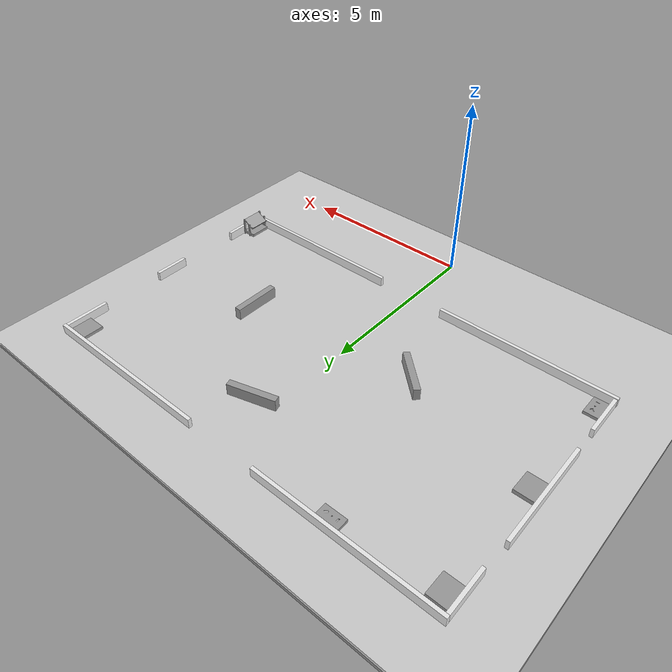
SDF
<sdf version="1.6">
 <world name="default">
  <light name="sun" type="directional">
   <pose>0 0 10 0 -0 0</pose>
   <diffuse>0.8 0.8 0.8 1</diffuse>
   <specular>0.2 0.2 0.2 1</specular>
   <attenuation>
    <range>1000</range>
    <constant>0.9</constant>
    <linear>0.01</linear>
    <quadratic>0.001</quadratic>
   </attenuation>
   <direction>-0.5 0.1 -0.9</direction>
  </light>
  <model name="ground_plane">
   <static>1</static>
   <link name="link">
    <collision name="collision">
     <geometry><plane><normal>0 0 1</normal><size>100 100</size></plane></geometry>
     <surface>
      <contact><collide_bitmask>65535</collide_bitmask></contact>
      <friction><ode><mu>100</mu><mu2>50</mu2></ode></friction>
     </surface>
    </collision>
    <visual name="visual">
     <cast_shadows>0</cast_shadows>
     <geometry><plane><normal>0 0 1</normal><size>100 100</size></plane></geometry>
     <material>
      <script><uri>file://media/materials/scripts/gazebo.material</uri><name>Gazebo/Grey</name></script>
     </material>
    </visual>
   </link>
  </model>
  <gravity>0 0 -9.8</gravity>
  <magnetic_field>6e-06 2.3e-05 -4.2e-05</magnetic_field>
  <atmosphere type="adiabatic"/>
  <physics name="default_physics" default="0" type="ode">
   <max_step_size>0.005</max_step_size>
   <real_time_factor>1</real_time_factor>
   <real_time_update_rate>1000</real_time_update_rate>
  </physics>
  <scene><ambient>0.4 0.4 0.4 1</ambient><background>0.7 0.7 0.7 1</background><shadows>1</shadows></scene>
  <audio><device>default</device></audio>
  <spherical_coordinates>
   <surface_model>EARTH_WGS84</surface_model>
   <latitude_deg>0</latitude_deg>
   <longitude_deg>0</longitude_deg>
   <elevation>0</elevation>
   <heading_deg>0</heading_deg>
  </spherical_coordinates>
  <model name="Untitled">
   <link name="link_0">
    <inertial>
     <mass>0.0777453</mass>
     <inertia>
      <ixx>0.00091384</ixx>
      <ixy>0</ixy>
      <ixz>0</ixz>
      <iyy>0.0119001</iyy>
      <iyz>0</iyz>
      <izz>0.0114027</izz>
     </inertia>
    </inertial>
    <pose>1.24234 1.67731 0.062141 0 0 -2.85804</pose>
    <visual name="visual">
     <geometry><box><size>1.31448 0.179265 0.330024</size></box></geometry>
     <material>
      <lighting>1</lighting>
      <script><uri>file://media/materials/scripts/gazebo.material</uri><name>Gazebo/Grey</name></script>
      <ambient>1 1 1 1</ambient>
      <shader type="vertex"><normal_map>__default__</normal_map></shader>
      <diffuse>0.7 0.7 0.7 1</diffuse>
      <specular>0.01 0.01 0.01 1</specular>
      <emissive>0 0 0 1</emissive>
     </material>
    </visual>
    <collision name="collision">
     <geometry><box><size>1.31448 0.179265 0.330024</size></box></geometry>
     <surface>
      <friction>
       <ode><mu>1</mu><mu2>1</mu2><fdir1>0 0 0</fdir1><slip1>0</slip1><slip2>0</slip2></ode>
       <torsional>
        <coefficient>1</coefficient>
        <patch_radius>0</patch_radius>
        <surface_radius>0</surface_radius>
        <use_patch_radius>1</use_patch_radius>
        <ode><slip>0</slip></ode>
       </torsional>
      </friction>
      <bounce><restitution_coefficient>0</restitution_coefficient><threshold>1e+06</threshold></bounce>
      <contact>
       <collide_without_contact>0</collide_without_contact>
       <collide_without_contact_bitmask>1</collide_without_contact_bitmask>
       <collide_bitmask>1</collide_bitmask>
       <ode>
        <soft_cfm>0</soft_cfm>
        <soft_erp>0.2</soft_erp>
        <kp>1e+13</kp>
        <kd>1</kd>
        <max_vel>0.01</max_vel>
        <min_depth>0</min_depth>
       </ode>
       <bullet>
        <split_impulse>1</split_impulse>
        <split_impulse_penetration_threshold>-0.01</split_impulse_penetration_threshold>
        <soft_cfm>0</soft_cfm>
        <soft_erp>0.2</soft_erp>
        <kp>1e+13</kp>
        <kd>1</kd>
       </bullet>
      </contact>
     </surface>
    </collision>
   </link>
   <link name="link_0_clone">
    <inertial>
     <mass>0.0777453</mass>
     <inertia>
      <ixx>0.00091384</ixx>
      <ixy>0</ixy>
      <ixz>0</ixz>
      <iyy>0.0119001</iyy>
      <iyz>0</iyz>
      <izz>0.0114027</izz>
     </inertia>
    </inertial>
    <pose>3.6912 -0.817004 0.062141 0 0 -1.57292</pose>
    <visual name="visual">
     <geometry><box><size>1.31448 0.179265 0.330024</size></box></geometry>
     <material>
      <lighting>1</lighting>
      <script><uri>file://media/materials/scripts/gazebo.material</uri><name>Gazebo/Grey</name></script>
      <shader type="vertex"><normal_map>__default__</normal_map></shader>
      <ambient>1 1 1 0</ambient>
      <diffuse>0.7 0.7 0.7 1</diffuse>
      <specular>0.01 0.01 0.01 1</specular>
      <emissive>0 0 0 1</emissive>
     </material>
    </visual>
    <collision name="collision">
     <geometry><box><size>1.31448 0.179265 0.330024</size></box></geometry>
     <surface>
      <friction>
       <ode><mu>1</mu><mu2>1</mu2><fdir1>0 0 0</fdir1><slip1>0</slip1><slip2>0</slip2></ode>
       <torsional>
        <coefficient>1</coefficient>
        <patch_radius>0</patch_radius>
        <surface_radius>0</surface_radius>
        <use_patch_radius>1</use_patch_radius>
        <ode><slip>0</slip></ode>
       </torsional>
      </friction>
      <bounce><restitution_coefficient>0</restitution_coefficient><threshold>1e+06</threshold></bounce>
      <contact>
       <collide_without_contact>0</collide_without_contact>
       <collide_without_contact_bitmask>1</collide_without_contact_bitmask>
       <collide_bitmask>1</collide_bitmask>
       <ode>
        <soft_cfm>0</soft_cfm>
        <soft_erp>0.2</soft_erp>
        <kp>1e+13</kp>
        <kd>1</kd>
        <max_vel>0.01</max_vel>
        <min_depth>0</min_depth>
       </ode>
       <bullet>
        <split_impulse>1</split_impulse>
        <split_impulse_penetration_threshold>-0.01</split_impulse_penetration_threshold>
        <soft_cfm>0</soft_cfm>
        <soft_erp>0.2</soft_erp>
        <kp>1e+13</kp>
        <kd>1</kd>
       </bullet>
      </contact>
     </surface>
    </collision>
   </link>
   <link name="link_0_clone_clone">
    <inertial>
     <mass>0.0777453</mass>
     <inertia>
      <ixx>0.00091384</ixx>
      <ixy>0</ixy>
      <ixz>0</ixz>
      <iyy>0.0119001</iyy>
      <iyz>0</iyz>
      <izz>0.0114027</izz>
     </inertia>
    </inertial>
    <pose>-1.15829 -1.32579 0.062141 0 0 -0.738896</pose>
    <visual name="visual">
     <geometry><box><size>1.31448 0.179265 0.330024</size></box></geometry>
     <material>
      <lighting>1</lighting>
      <script><uri>file://media/materials/scripts/gazebo.material</uri><name>Gazebo/Grey</name></script>
      <shader type="pixel"><normal_map>__default__</normal_map></shader>
      <ambient>1 1 1 0</ambient>
      <diffuse>0.7 0.7 0.7 1</diffuse>
      <specular>0.01 0.01 0.01 1</specular>
      <emissive>0 0 0 1</emissive>
     </material>
    </visual>
    <collision name="collision">
     <geometry><box><size>1.31448 0.179265 0.330024</size></box></geometry>
     <surface>
      <friction>
       <ode><mu>1</mu><mu2>1</mu2><fdir1>0 0 0</fdir1><slip1>0</slip1><slip2>0</slip2></ode>
       <torsional>
        <coefficient>1</coefficient>
        <patch_radius>0</patch_radius>
        <surface_radius>0</surface_radius>
        <use_patch_radius>1</use_patch_radius>
        <ode><slip>0</slip></ode>
       </torsional>
      </friction>
      <bounce><restitution_coefficient>0</restitution_coefficient><threshold>1e+06</threshold></bounce>
      <contact>
       <collide_without_contact>0</collide_without_contact>
       <collide_without_contact_bitmask>1</collide_without_contact_bitmask>
       <collide_bitmask>1</collide_bitmask>
       <ode>
        <soft_cfm>0</soft_cfm>
        <soft_erp>0.2</soft_erp>
        <kp>1e+13</kp>
        <kd>1</kd>
        <max_vel>0.01</max_vel>
        <min_depth>0</min_depth>
       </ode>
       <bullet>
        <split_impulse>1</split_impulse>
        <split_impulse_penetration_threshold>-0.01</split_impulse_penetration_threshold>
        <soft_cfm>0</soft_cfm>
        <soft_erp>0.2</soft_erp>
        <kp>1e+13</kp>
        <kd>1</kd>
       </bullet>
      </contact>
     </surface>
    </collision>
   </link>
   <link name="link_1">
    <inertial>
     <mass>1</mass>
     <inertia>
      <ixx>0.166667</ixx>
      <ixy>0</ixy>
      <ixz>0</ixz>
      <iyy>0.166667</iyy>
      <iyz>0</iyz>
      <izz>0.166667</izz>
     </inertia>
    </inertial>
    <pose>6.39128 -3.46315 0.139995 0 -0 0</pose>
    <visual name="visual">
     <geometry><mesh><uri>/home/altzi/Desktop/newSHELF.stl</uri><scale>1 1 1</scale></mesh></geometry>
     <material>
      <lighting>1</lighting>
      <script><uri>file://media/materials/scripts/gazebo.material</uri><name>Gazebo/Grey</name></script>
      <ambient>1 1 1 0</ambient>
      <shader type="vertex"><normal_map>__default__</normal_map></shader>
      <diffuse>0.7 0.7 0.7 1</diffuse>
      <specular>0.01 0.01 0.01 1</specular>
      <emissive>0 0 0 1</emissive>
     </material>
    </visual>
    <collision name="collision">
     <geometry><mesh><uri>/home/altzi/Desktop/newSHELF.stl</uri><scale>1 1 1</scale></mesh></geometry>
     <surface>
      <friction>
       <ode><mu>1</mu><mu2>1</mu2><fdir1>0 0 0</fdir1><slip1>0</slip1><slip2>0</slip2></ode>
       <torsional>
        <coefficient>1</coefficient>
        <patch_radius>0</patch_radius>
        <surface_radius>0</surface_radius>
        <use_patch_radius>1</use_patch_radius>
        <ode><slip>0</slip></ode>
       </torsional>
      </friction>
      <bounce><restitution_coefficient>0</restitution_coefficient><threshold>1e+06</threshold></bounce>
      <contact>
       <collide_without_contact>0</collide_without_contact>
       <collide_without_contact_bitmask>1</collide_without_contact_bitmask>
       <collide_bitmask>1</collide_bitmask>
       <ode>
        <soft_cfm>0</soft_cfm>
        <soft_erp>0.2</soft_erp>
        <kp>1e+13</kp>
        <kd>1</kd>
        <max_vel>0.01</max_vel>
        <min_depth>0</min_depth>
       </ode>
       <bullet>
        <split_impulse>1</split_impulse>
        <split_impulse_penetration_threshold>-0.01</split_impulse_penetration_threshold>
        <soft_cfm>0</soft_cfm>
        <soft_erp>0.2</soft_erp>
        <kp>1e+13</kp>
        <kd>1</kd>
       </bullet>
      </contact>
     </surface>
    </collision>
   </link>
   <link name="link_2">
    <inertial>
     <mass>1</mass>
     <inertia>
      <ixx>0.166667</ixx>
      <ixy>0</ixy>
      <ixz>0</ixz>
      <iyy>0.166667</iyy>
      <iyz>0</iyz>
      <izz>0.166667</izz>
     </inertia>
    </inertial>
    <pose>-4.98868 -3.35829 -0.077516 0 -0 0</pose>
    <visual name="visual">
     <geometry><mesh><uri>/home/altzi/Desktop/CAV.stl</uri><scale>1 1 1</scale></mesh></geometry>
     <material>
      <lighting>1</lighting>
      <script><uri>file://media/materials/scripts/gazebo.material</uri><name>Gazebo/Grey</name></script>
      <ambient>1 1 1 0</ambient>
      <shader type="vertex"><normal_map>__default__</normal_map></shader>
      <diffuse>0.7 0.7 0.7 1</diffuse>
      <specular>0.01 0.01 0.01 1</specular>
      <emissive>0 0 0 1</emissive>
     </material>
    </visual>
    <collision name="collision">
     <geometry><mesh><uri>/home/altzi/Desktop/CAV.stl</uri><scale>1 1 1</scale></mesh></geometry>
     <surface>
      <friction>
       <ode><mu>1</mu><mu2>1</mu2><fdir1>0 0 0</fdir1><slip1>0</slip1><slip2>0</slip2></ode>
       <torsional>
        <coefficient>1</coefficient>
        <patch_radius>0</patch_radius>
        <surface_radius>0</surface_radius>
        <use_patch_radius>1</use_patch_radius>
        <ode><slip>0</slip></ode>
       </torsional>
      </friction>
      <bounce><restitution_coefficient>0</restitution_coefficient><threshold>1e+06</threshold></bounce>
      <contact>
       <collide_without_contact>0</collide_without_contact>
       <collide_without_contact_bitmask>1</collide_without_contact_bitmask>
       <collide_bitmask>1</collide_bitmask>
       <ode>
        <soft_cfm>0</soft_cfm>
        <soft_erp>0.2</soft_erp>
        <kp>1e+13</kp>
        <kd>1</kd>
        <max_vel>0.01</max_vel>
        <min_depth>0</min_depth>
       </ode>
       <bullet>
        <split_impulse>1</split_impulse>
        <split_impulse_penetration_threshold>-0.01</split_impulse_penetration_threshold>
        <soft_cfm>0</soft_cfm>
        <soft_erp>0.2</soft_erp>
        <kp>1e+13</kp>
        <kd>1</kd>
       </bullet>
      </contact>
     </surface>
    </collision>
   </link>
   <link name="link_2_clone">
    <inertial>
     <mass>1</mass>
     <inertia>
      <ixx>0.166667</ixx>
      <ixy>0</ixy>
      <ixz>0</ixz>
      <iyy>0.166667</iyy>
      <iyz>0</iyz>
      <izz>0.166667</izz>
     </inertia>
    </inertial>
    <pose>-2.30364 2.96898 -0.077516 0 0 -1.56503</pose>
    <visual name="visual">
     <geometry><mesh><uri>/home/altzi/Desktop/CAV.stl</uri><scale>1 1 1</scale></mesh></geometry>
     <material>
      <lighting>1</lighting>
      <script><uri>file://media/materials/scripts/gazebo.material</uri><name>Gazebo/Grey</name></script>
      <shader type="vertex"><normal_map>__default__</normal_map></shader>
      <ambient>1 1 1 0</ambient>
      <diffuse>0.7 0.7 0.7 1</diffuse>
      <specular>0.01 0.01 0.01 1</specular>
      <emissive>0 0 0 1</emissive>
     </material>
    </visual>
    <collision name="collision">
     <geometry><mesh><uri>/home/altzi/Desktop/CAV.stl</uri><scale>1 1 1</scale></mesh></geometry>
     <surface>
      <friction>
       <ode><mu>1</mu><mu2>1</mu2><fdir1>0 0 0</fdir1><slip1>0</slip1><slip2>0</slip2></ode>
       <torsional>
        <coefficient>1</coefficient>
        <patch_radius>0</patch_radius>
        <surface_radius>0</surface_radius>
        <use_patch_radius>1</use_patch_radius>
        <ode><slip>0</slip></ode>
       </torsional>
      </friction>
      <bounce><restitution_coefficient>0</restitution_coefficient><threshold>1e+06</threshold></bounce>
      <contact>
       <collide_without_contact>0</collide_without_contact>
       <collide_without_contact_bitmask>1</collide_without_contact_bitmask>
       <collide_bitmask>1</collide_bitmask>
       <ode>
        <soft_cfm>0</soft_cfm>
        <soft_erp>0.2</soft_erp>
        <kp>1e+13</kp>
        <kd>1</kd>
        <max_vel>0.01</max_vel>
        <min_depth>0</min_depth>
       </ode>
       <bullet>
        <split_impulse>1</split_impulse>
        <split_impulse_penetration_threshold>-0.01</split_impulse_penetration_threshold>
        <soft_cfm>0</soft_cfm>
        <soft_erp>0.2</soft_erp>
        <kp>1e+13</kp>
        <kd>1</kd>
       </bullet>
      </contact>
     </surface>
    </collision>
   </link>
   <link name="link_3">
    <inertial>
     <mass>0.036541</mass>
     <inertia>
      <ixx>0.00117789</ixx>
      <ixy>0</ixy>
      <ixz>0</ixz>
      <iyy>0.00090759</iyy>
      <iyz>0</iyz>
      <izz>0.00200941</izz>
     </inertia>
    </inertial>
    <pose>-4.96354 -0.339464 -0.02174 0 -0 0</pose>
    <visual name="visual">
     <geometry><box><size>0.534378 0.611822 0.11177</size></box></geometry>
     <material>
      <lighting>1</lighting>
      <script><uri>file://media/materials/scripts/gazebo.material</uri><name>Gazebo/Grey</name></script>
      <ambient>1 1 1 0</ambient>
      <shader type="vertex"><normal_map>__default__</normal_map></shader>
      <diffuse>0.7 0.7 0.7 1</diffuse>
      <specular>0.01 0.01 0.01 1</specular>
      <emissive>0 0 0 1</emissive>
     </material>
    </visual>
    <collision name="collision">
     <geometry><box><size>0.534378 0.611822 0.11177</size></box></geometry>
     <surface>
      <friction>
       <ode><mu>1</mu><mu2>1</mu2><fdir1>0 0 0</fdir1><slip1>0</slip1><slip2>0</slip2></ode>
       <torsional>
        <coefficient>1</coefficient>
        <patch_radius>0</patch_radius>
        <surface_radius>0</surface_radius>
        <use_patch_radius>1</use_patch_radius>
        <ode><slip>0</slip></ode>
       </torsional>
      </friction>
      <bounce><restitution_coefficient>0</restitution_coefficient><threshold>1e+06</threshold></bounce>
      <contact>
       <collide_without_contact>0</collide_without_contact>
       <collide_without_contact_bitmask>1</collide_without_contact_bitmask>
       <collide_bitmask>1</collide_bitmask>
       <ode>
        <soft_cfm>0</soft_cfm>
        <soft_erp>0.2</soft_erp>
        <kp>1e+13</kp>
        <kd>1</kd>
        <max_vel>0.01</max_vel>
        <min_depth>0</min_depth>
       </ode>
       <bullet>
        <split_impulse>1</split_impulse>
        <split_impulse_penetration_threshold>-0.01</split_impulse_penetration_threshold>
        <soft_cfm>0</soft_cfm>
        <soft_erp>0.2</soft_erp>
        <kp>1e+13</kp>
        <kd>1</kd>
       </bullet>
      </contact>
     </surface>
    </collision>
   </link>
   <link name="link_3_clone">
    <inertial>
     <mass>0.0277356</mass>
     <inertia>
      <ixx>0.00088181</ixx>
      <ixy>0</ixy>
      <ixz>0</ixz>
      <iyy>0.00067665</iyy>
      <iyz>0</iyz>
      <izz>0.00152519</izz>
     </inertia>
    </inertial>
    <pose>-4.93009 2.7377 -0.037516 0 -0 0</pose>
    <visual name="visual">
     <geometry><box><size>0.534378 0.611822 0.084833</size></box></geometry>
     <material>
      <lighting>1</lighting>
      <script><uri>file://media/materials/scripts/gazebo.material</uri><name>Gazebo/Grey</name></script>
      <shader type="vertex"><normal_map>__default__</normal_map></shader>
      <ambient>1 1 1 0</ambient>
      <diffuse>0.7 0.7 0.7 1</diffuse>
      <specular>0.01 0.01 0.01 1</specular>
      <emissive>0 0 0 1</emissive>
     </material>
    </visual>
    <collision name="collision">
     <geometry><box><size>0.534378 0.611822 0.084833</size></box></geometry>
     <surface>
      <friction>
       <ode><mu>1</mu><mu2>1</mu2><fdir1>0 0 0</fdir1><slip1>0</slip1><slip2>0</slip2></ode>
       <torsional>
        <coefficient>1</coefficient>
        <patch_radius>0</patch_radius>
        <surface_radius>0</surface_radius>
        <use_patch_radius>1</use_patch_radius>
        <ode><slip>0</slip></ode>
       </torsional>
      </friction>
      <bounce><restitution_coefficient>0</restitution_coefficient><threshold>1e+06</threshold></bounce>
      <contact>
       <collide_without_contact>0</collide_without_contact>
       <collide_without_contact_bitmask>1</collide_without_contact_bitmask>
       <collide_bitmask>1</collide_bitmask>
       <ode>
        <soft_cfm>0</soft_cfm>
        <soft_erp>0.2</soft_erp>
        <kp>1e+13</kp>
        <kd>1</kd>
        <max_vel>0.01</max_vel>
        <min_depth>0</min_depth>
       </ode>
       <bullet>
        <split_impulse>1</split_impulse>
        <split_impulse_penetration_threshold>-0.01</split_impulse_penetration_threshold>
        <soft_cfm>0</soft_cfm>
        <soft_erp>0.2</soft_erp>
        <kp>1e+13</kp>
        <kd>1</kd>
       </bullet>
      </contact>
     </surface>
    </collision>
   </link>
   <link name="link_3_clone_clone">
    <inertial>
     <mass>0.0277356</mass>
     <inertia>
      <ixx>0.00088181</ixx>
      <ixy>0</ixy>
      <ixz>0</ixz>
      <iyy>0.00067665</iyy>
      <iyz>0</iyz>
      <izz>0.00152519</izz>
     </inertia>
    </inertial>
    <pose>6.29599 2.81597 -0.034618 0 -0 0</pose>
    <visual name="visual">
     <geometry><box><size>0.534378 0.611822 0.084833</size></box></geometry>
     <material>
      <lighting>1</lighting>
      <script><uri>file://media/materials/scripts/gazebo.material</uri><name>Gazebo/Grey</name></script>
      <shader type="pixel"><normal_map>__default__</normal_map></shader>
      <ambient>1 1 1 0</ambient>
      <diffuse>0.7 0.7 0.7 1</diffuse>
      <specular>0.01 0.01 0.01 1</specular>
      <emissive>0 0 0 1</emissive>
     </material>
    </visual>
    <collision name="collision">
     <geometry><box><size>0.534378 0.611822 0.084833</size></box></geometry>
     <surface>
      <friction>
       <ode><mu>1</mu><mu2>1</mu2><fdir1>0 0 0</fdir1><slip1>0</slip1><slip2>0</slip2></ode>
       <torsional>
        <coefficient>1</coefficient>
        <patch_radius>0</patch_radius>
        <surface_radius>0</surface_radius>
        <use_patch_radius>1</use_patch_radius>
        <ode><slip>0</slip></ode>
       </torsional>
      </friction>
      <bounce><restitution_coefficient>0</restitution_coefficient><threshold>1e+06</threshold></bounce>
      <contact>
       <collide_without_contact>0</collide_without_contact>
       <collide_without_contact_bitmask>1</collide_without_contact_bitmask>
       <collide_bitmask>1</collide_bitmask>
       <ode>
        <soft_cfm>0</soft_cfm>
        <soft_erp>0.2</soft_erp>
        <kp>1e+13</kp>
        <kd>1</kd>
        <max_vel>0.01</max_vel>
        <min_depth>0</min_depth>
       </ode>
       <bullet>
        <split_impulse>1</split_impulse>
        <split_impulse_penetration_threshold>-0.01</split_impulse_penetration_threshold>
        <soft_cfm>0</soft_cfm>
        <soft_erp>0.2</soft_erp>
        <kp>1e+13</kp>
        <kd>1</kd>
       </bullet>
      </contact>
     </surface>
    </collision>
   </link>
   <model name="blueprint">
    <link name="link_0_clone_1">
     <inertial>
      <mass>0.19893</mass>
      <inertia>
       <ixx>0.00309729</ixx>
       <ixy>0</ixy>
       <ixz>0</ixz>
       <iyy>0.415029</iyy>
       <iyz>0</iyz>
       <izz>0.412229</izz>
      </inertia>
     </inertial>
     <pose>3.48107 -2.97899 0.015598 0 -0 0</pose>
     <visual name="visual">
      <geometry><box><size>4.98576 0.094728 0.421739</size></box></geometry>
      <material>
       <lighting>1</lighting>
       <script><uri>file://media/materials/scripts/gazebo.material</uri><name>Gazebo/White</name></script>
       <shader type="pixel"/>
       <emissive>0 0 0 1</emissive>
      </material>
     </visual>
     <collision name="collision">
      <geometry><box><size>4.98576 0.094728 0.421739</size></box></geometry>
      <surface>
       <friction>
        <ode><mu>1</mu><mu2>1</mu2><fdir1>0 0 0</fdir1><slip1>0</slip1><slip2>0</slip2></ode>
        <torsional>
         <coefficient>1</coefficient>
         <patch_radius>0</patch_radius>
         <surface_radius>0</surface_radius>
         <use_patch_radius>1</use_patch_radius>
         <ode><slip>0</slip></ode>
        </torsional>
       </friction>
       <bounce><restitution_coefficient>0</restitution_coefficient><threshold>1e+06</threshold></bounce>
       <contact>
        <collide_without_contact>0</collide_without_contact>
        <collide_without_contact_bitmask>1</collide_without_contact_bitmask>
        <collide_bitmask>1</collide_bitmask>
        <ode>
         <soft_cfm>0</soft_cfm>
         <soft_erp>0.2</soft_erp>
         <kp>1e+13</kp>
         <kd>1</kd>
         <max_vel>0.01</max_vel>
         <min_depth>0</min_depth>
        </ode>
        <bullet>
         <split_impulse>1</split_impulse>
         <split_impulse_penetration_threshold>-0.01</split_impulse_penetration_threshold>
         <soft_cfm>0</soft_cfm>
         <soft_erp>0.2</soft_erp>
         <kp>1e+13</kp>
         <kd>1</kd>
        </bullet>
       </contact>
      </surface>
     </collision>
    </link>
    <link name="link_0_clone_1_clone">
     <inertial>
      <mass>0.19893</mass>
      <inertia>
       <ixx>0.00309729</ixx>
       <ixy>0</ixy>
       <ixz>0</ixz>
       <iyy>0.415029</iyy>
       <iyz>0</iyz>
       <izz>0.412229</izz>
      </inertia>
     </inertial>
     <pose>3.48028 4.0921 0.015598 0 -0 0</pose>
     <visual name="visual">
      <geometry><box><size>4.98576 0.094728 0.421739</size></box></geometry>
      <material>
       <lighting>1</lighting>
       <script><uri>file://media/materials/scripts/gazebo.material</uri><name>Gazebo/White</name></script>
       <shader type="pixel"/>
       <emissive>0 0 0 1</emissive>
      </material>
     </visual>
     <collision name="collision">
      <geometry><box><size>4.98576 0.094728 0.421739</size></box></geometry>
      <surface>
       <friction>
        <ode><mu>1</mu><mu2>1</mu2><fdir1>0 0 0</fdir1><slip1>0</slip1><slip2>0</slip2></ode>
        <torsional>
         <coefficient>1</coefficient>
         <patch_radius>0</patch_radius>
         <surface_radius>0</surface_radius>
         <use_patch_radius>1</use_patch_radius>
         <ode><slip>0</slip></ode>
        </torsional>
       </friction>
       <bounce><restitution_coefficient>0</restitution_coefficient><threshold>1e+06</threshold></bounce>
       <contact>
        <collide_without_contact>0</collide_without_contact>
        <collide_without_contact_bitmask>1</collide_without_contact_bitmask>
        <collide_bitmask>1</collide_bitmask>
        <ode>
         <soft_cfm>0</soft_cfm>
         <soft_erp>0.2</soft_erp>
         <kp>1e+13</kp>
         <kd>1</kd>
         <max_vel>0.01</max_vel>
         <min_depth>0</min_depth>
        </ode>
        <bullet>
         <split_impulse>1</split_impulse>
         <split_impulse_penetration_threshold>-0.01</split_impulse_penetration_threshold>
         <soft_cfm>0</soft_cfm>
         <soft_erp>0.2</soft_erp>
         <kp>1e+13</kp>
         <kd>1</kd>
        </bullet>
       </contact>
      </surface>
     </collision>
    </link>
    <link name="link_0_clone_1_clone_0">
     <inertial>
      <mass>0.19893</mass>
      <inertia>
       <ixx>0.00309729</ixx>
       <ixy>0</ixy>
       <ixz>0</ixz>
       <iyy>0.415029</iyy>
       <iyz>0</iyz>
       <izz>0.412229</izz>
      </inertia>
     </inertial>
     <pose>-3.52662 -2.91633 0.015598 0 -0 0</pose>
     <visual name="visual">
      <geometry><box><size>4.98576 0.094728 0.421739</size></box></geometry>
      <material>
       <lighting>1</lighting>
       <script><uri>file://media/materials/scripts/gazebo.material</uri><name>Gazebo/White</name></script>
       <shader type="pixel"/>
       <emissive>0 0 0 1</emissive>
      </material>
     </visual>
     <collision name="collision">
      <geometry><box><size>4.98576 0.094728 0.421739</size></box></geometry>
      <surface>
       <friction>
        <ode><mu>1</mu><mu2>1</mu2><fdir1>0 0 0</fdir1><slip1>0</slip1><slip2>0</slip2></ode>
        <torsional>
         <coefficient>1</coefficient>
         <patch_radius>0</patch_radius>
         <surface_radius>0</surface_radius>
         <use_patch_radius>1</use_patch_radius>
         <ode><slip>0</slip></ode>
        </torsional>
       </friction>
       <bounce><restitution_coefficient>0</restitution_coefficient><threshold>1e+06</threshold></bounce>
       <contact>
        <collide_without_contact>0</collide_without_contact>
        <collide_without_contact_bitmask>1</collide_without_contact_bitmask>
        <collide_bitmask>1</collide_bitmask>
        <ode>
         <soft_cfm>0</soft_cfm>
         <soft_erp>0.2</soft_erp>
         <kp>1e+13</kp>
         <kd>1</kd>
         <max_vel>0.01</max_vel>
         <min_depth>0</min_depth>
        </ode>
        <bullet>
         <split_impulse>1</split_impulse>
         <split_impulse_penetration_threshold>-0.01</split_impulse_penetration_threshold>
         <soft_cfm>0</soft_cfm>
         <soft_erp>0.2</soft_erp>
         <kp>1e+13</kp>
         <kd>1</kd>
        </bullet>
       </contact>
      </surface>
     </collision>
    </link>
    <link name="link_0_clone_1_clone_clone">
     <inertial>
      <mass>0.19893</mass>
      <inertia>
       <ixx>0.00309729</ixx>
       <ixy>0</ixy>
       <ixz>0</ixz>
       <iyy>0.415029</iyy>
       <iyz>0</iyz>
       <izz>0.412229</izz>
      </inertia>
     </inertial>
     <pose>-3.51109 4.10317 0.015598 0 -0 0</pose>
     <visual name="visual">
      <geometry><box><size>4.98576 0.094728 0.421739</size></box></geometry>
      <material>
       <lighting>1</lighting>
       <script><uri>file://media/materials/scripts/gazebo.material</uri><name>Gazebo/White</name></script>
       <shader type="pixel"/>
       <emissive>0 0 0 1</emissive>
      </material>
     </visual>
     <collision name="collision">
      <geometry><box><size>4.98576 0.094728 0.421739</size></box></geometry>
      <surface>
       <friction>
        <ode><mu>1</mu><mu2>1</mu2><fdir1>0 0 0</fdir1><slip1>0</slip1><slip2>0</slip2></ode>
        <torsional>
         <coefficient>1</coefficient>
         <patch_radius>0</patch_radius>
         <surface_radius>0</surface_radius>
         <use_patch_radius>1</use_patch_radius>
         <ode><slip>0</slip></ode>
        </torsional>
       </friction>
       <bounce><restitution_coefficient>0</restitution_coefficient><threshold>1e+06</threshold></bounce>
       <contact>
        <collide_without_contact>0</collide_without_contact>
        <collide_without_contact_bitmask>1</collide_without_contact_bitmask>
        <collide_bitmask>1</collide_bitmask>
        <ode>
         <soft_cfm>0</soft_cfm>
         <soft_erp>0.2</soft_erp>
         <kp>1e+13</kp>
         <kd>1</kd>
         <max_vel>0.01</max_vel>
         <min_depth>0</min_depth>
        </ode>
        <bullet>
         <split_impulse>1</split_impulse>
         <split_impulse_penetration_threshold>-0.01</split_impulse_penetration_threshold>
         <soft_cfm>0</soft_cfm>
         <soft_erp>0.2</soft_erp>
         <kp>1e+13</kp>
         <kd>1</kd>
        </bullet>
       </contact>
      </surface>
     </collision>
    </link>
    <link name="link_0_clone_clone_1">
     <inertial>
      <mass>0.0453879</mass>
      <inertia>
       <ixx>0.000621208</ixx>
       <ixy>0</ixy>
       <ixz>0</ixz>
       <iyy>0.00619212</iyy>
       <iyz>0</iyz>
       <izz>0.00563879</izz>
      </inertia>
     </inertial>
     <pose>5.92227 -2.32231 0.019338 0 0 -1.5637</pose>
     <visual name="visual">
      <geometry><box><size>1.21731 0.094728 0.394038</size></box></geometry>
      <material>
       <lighting>1</lighting>
       <script><uri>file://media/materials/scripts/gazebo.material</uri><name>Gazebo/White</name></script>
       <shader type="vertex"><normal_map>__default__</normal_map></shader>
       <emissive>0 0 0 1</emissive>
      </material>
     </visual>
     <collision name="collision">
      <geometry><box><size>1.21731 0.094728 0.394038</size></box></geometry>
      <surface>
       <friction>
        <ode><mu>1</mu><mu2>1</mu2><fdir1>0 0 0</fdir1><slip1>0</slip1><slip2>0</slip2></ode>
        <torsional>
         <coefficient>1</coefficient>
         <patch_radius>0</patch_radius>
         <surface_radius>0</surface_radius>
         <use_patch_radius>1</use_patch_radius>
         <ode><slip>0</slip></ode>
        </torsional>
       </friction>
       <bounce><restitution_coefficient>0</restitution_coefficient><threshold>1e+06</threshold></bounce>
       <contact>
        <collide_without_contact>0</collide_without_contact>
        <collide_without_contact_bitmask>1</collide_without_contact_bitmask>
        <collide_bitmask>1</collide_bitmask>
        <ode>
         <soft_cfm>0</soft_cfm>
         <soft_erp>0.2</soft_erp>
         <kp>1e+13</kp>
         <kd>1</kd>
         <max_vel>0.01</max_vel>
         <min_depth>0</min_depth>
        </ode>
        <bullet>
         <split_impulse>1</split_impulse>
         <split_impulse_penetration_threshold>-0.01</split_impulse_penetration_threshold>
         <soft_cfm>0</soft_cfm>
         <soft_erp>0.2</soft_erp>
         <kp>1e+13</kp>
         <kd>1</kd>
        </bullet>
       </contact>
      </surface>
     </collision>
    </link>
    <link name="link_0_clone_clone_1_clone">
     <inertial>
      <mass>0.0453879</mass>
      <inertia>
       <ixx>0.000621208</ixx>
       <ixy>0</ixy>
       <ixz>0</ixz>
       <iyy>0.00619212</iyy>
       <iyz>0</iyz>
       <izz>0.00563879</izz>
      </inertia>
     </inertial>
     <pose>-5.96782 -2.26025 0.019338 0 0 -1.5637</pose>
     <visual name="visual">
      <geometry><box><size>1.21731 0.094728 0.394038</size></box></geometry>
      <material>
       <lighting>1</lighting>
       <script><uri>file://media/materials/scripts/gazebo.material</uri><name>Gazebo/White</name></script>
       <shader type="vertex"><normal_map>__default__</normal_map></shader>
       <emissive>0 0 0 1</emissive>
      </material>
     </visual>
     <collision name="collision">
      <geometry><box><size>1.21731 0.094728 0.394038</size></box></geometry>
      <surface>
       <friction>
        <ode><mu>1</mu><mu2>1</mu2><fdir1>0 0 0</fdir1><slip1>0</slip1><slip2>0</slip2></ode>
        <torsional>
         <coefficient>1</coefficient>
         <patch_radius>0</patch_radius>
         <surface_radius>0</surface_radius>
         <use_patch_radius>1</use_patch_radius>
         <ode><slip>0</slip></ode>
        </torsional>
       </friction>
       <bounce><restitution_coefficient>0</restitution_coefficient><threshold>1e+06</threshold></bounce>
       <contact>
        <collide_without_contact>0</collide_without_contact>
        <collide_without_contact_bitmask>1</collide_without_contact_bitmask>
        <collide_bitmask>1</collide_bitmask>
        <ode>
         <soft_cfm>0</soft_cfm>
         <soft_erp>0.2</soft_erp>
         <kp>1e+13</kp>
         <kd>1</kd>
         <max_vel>0.01</max_vel>
         <min_depth>0</min_depth>
        </ode>
        <bullet>
         <split_impulse>1</split_impulse>
         <split_impulse_penetration_threshold>-0.01</split_impulse_penetration_threshold>
         <soft_cfm>0</soft_cfm>
         <soft_erp>0.2</soft_erp>
         <kp>1e+13</kp>
         <kd>1</kd>
        </bullet>
       </contact>
      </surface>
     </collision>
    </link>
    <link name="link_0_clone_clone_1_clone_0">
     <inertial>
      <mass>0.0357809</mass>
      <inertia>
       <ixx>0.000489719</ixx>
       <ixy>0</ixy>
       <ixz>0</ixz>
       <iyy>0.00320892</iyy>
       <iyz>0</iyz>
       <izz>0.00277272</izz>
      </inertia>
     </inertial>
     <pose>5.93722 0.55998 0.019338 0 0 -1.5637</pose>
     <visual name="visual">
      <geometry><box><size>0.959649 0.094728 0.394038</size></box></geometry>
      <material>
       <lighting>1</lighting>
       <script><uri>file://media/materials/scripts/gazebo.material</uri><name>Gazebo/White</name></script>
       <shader type="vertex"><normal_map>__default__</normal_map></shader>
      </material>
     </visual>
     <collision name="collision">
      <geometry><box><size>0.959649 0.094728 0.394038</size></box></geometry>
      <surface>
       <friction>
        <ode><mu>1</mu><mu2>1</mu2><fdir1>0 0 0</fdir1><slip1>0</slip1><slip2>0</slip2></ode>
        <torsional>
         <coefficient>1</coefficient>
         <patch_radius>0</patch_radius>
         <surface_radius>0</surface_radius>
         <use_patch_radius>1</use_patch_radius>
         <ode><slip>0</slip></ode>
        </torsional>
       </friction>
       <bounce><restitution_coefficient>0</restitution_coefficient><threshold>1e+06</threshold></bounce>
       <contact>
        <collide_without_contact>0</collide_without_contact>
        <collide_without_contact_bitmask>1</collide_without_contact_bitmask>
        <collide_bitmask>1</collide_bitmask>
        <ode>
         <soft_cfm>0</soft_cfm>
         <soft_erp>0.2</soft_erp>
         <kp>1e+13</kp>
         <kd>1</kd>
         <max_vel>0.01</max_vel>
         <min_depth>0</min_depth>
        </ode>
        <bullet>
         <split_impulse>1</split_impulse>
         <split_impulse_penetration_threshold>-0.01</split_impulse_penetration_threshold>
         <soft_cfm>0</soft_cfm>
         <soft_erp>0.2</soft_erp>
         <kp>1e+13</kp>
         <kd>1</kd>
        </bullet>
       </contact>
      </surface>
     </collision>
    </link>
    <link name="link_0_clone_clone_1_clone_1">
     <inertial>
      <mass>0.0453879</mass>
      <inertia>
       <ixx>0.000621208</ixx>
       <ixy>0</ixy>
       <ixz>0</ixz>
       <iyy>0.00619212</iyy>
       <iyz>0</iyz>
       <izz>0.00563879</izz>
      </inertia>
     </inertial>
     <pose>5.92147 3.43729 0.019338 0 0 -1.5637</pose>
     <visual name="visual">
      <geometry><box><size>1.21731 0.094728 0.394038</size></box></geometry>
      <material>
       <lighting>1</lighting>
       <script><uri>file://media/materials/scripts/gazebo.material</uri><name>Gazebo/White</name></script>
       <shader type="vertex"><normal_map>__default__</normal_map></shader>
       <emissive>0 0 0 1</emissive>
      </material>
     </visual>
     <collision name="collision">
      <geometry><box><size>1.21731 0.094728 0.394038</size></box></geometry>
      <surface>
       <friction>
        <ode><mu>1</mu><mu2>1</mu2><fdir1>0 0 0</fdir1><slip1>0</slip1><slip2>0</slip2></ode>
        <torsional>
         <coefficient>1</coefficient>
         <patch_radius>0</patch_radius>
         <surface_radius>0</surface_radius>
         <use_patch_radius>1</use_patch_radius>
         <ode><slip>0</slip></ode>
        </torsional>
       </friction>
       <bounce><restitution_coefficient>0</restitution_coefficient><threshold>1e+06</threshold></bounce>
       <contact>
        <collide_without_contact>0</collide_without_contact>
        <collide_without_contact_bitmask>1</collide_without_contact_bitmask>
        <collide_bitmask>1</collide_bitmask>
        <ode>
         <soft_cfm>0</soft_cfm>
         <soft_erp>0.2</soft_erp>
         <kp>1e+13</kp>
         <kd>1</kd>
         <max_vel>0.01</max_vel>
         <min_depth>0</min_depth>
        </ode>
        <bullet>
         <split_impulse>1</split_impulse>
         <split_impulse_penetration_threshold>-0.01</split_impulse_penetration_threshold>
         <soft_cfm>0</soft_cfm>
         <soft_erp>0.2</soft_erp>
         <kp>1e+13</kp>
         <kd>1</kd>
        </bullet>
       </contact>
      </surface>
     </collision>
    </link>
    <link name="link_0_clone_clone_1_clone_clone">
     <inertial>
      <mass>0.112766</mass>
      <inertia>
       <ixx>0.00154339</ixx>
       <ixy>0</ixy>
       <ixz>0</ixz>
       <iyy>0.0874153</iyy>
       <iyz>0</iyz>
       <izz>0.0860405</izz>
      </inertia>
     </inertial>
     <pose>-5.9956 0.55872 0.019338 0 0 -1.5637</pose>
     <visual name="visual">
      <geometry><box><size>3.02441 0.094728 0.394038</size></box></geometry>
      <material>
       <lighting>1</lighting>
       <script><uri>file://media/materials/scripts/gazebo.material</uri><name>Gazebo/White</name></script>
       <shader type="vertex"><normal_map>__default__</normal_map></shader>
      </material>
     </visual>
     <collision name="collision">
      <geometry><box><size>3.02441 0.094728 0.394038</size></box></geometry>
      <surface>
       <friction>
        <ode><mu>1</mu><mu2>1</mu2><fdir1>0 0 0</fdir1><slip1>0</slip1><slip2>0</slip2></ode>
        <torsional>
         <coefficient>1</coefficient>
         <patch_radius>0</patch_radius>
         <surface_radius>0</surface_radius>
         <use_patch_radius>1</use_patch_radius>
         <ode><slip>0</slip></ode>
        </torsional>
       </friction>
       <bounce><restitution_coefficient>0</restitution_coefficient><threshold>1e+06</threshold></bounce>
       <contact>
        <collide_without_contact>0</collide_without_contact>
        <collide_without_contact_bitmask>1</collide_without_contact_bitmask>
        <collide_bitmask>1</collide_bitmask>
        <ode>
         <soft_cfm>0</soft_cfm>
         <soft_erp>0.2</soft_erp>
         <kp>1e+13</kp>
         <kd>1</kd>
         <max_vel>0.01</max_vel>
         <min_depth>0</min_depth>
        </ode>
        <bullet>
         <split_impulse>1</split_impulse>
         <split_impulse_penetration_threshold>-0.01</split_impulse_penetration_threshold>
         <soft_cfm>0</soft_cfm>
         <soft_erp>0.2</soft_erp>
         <kp>1e+13</kp>
         <kd>1</kd>
        </bullet>
       </contact>
      </surface>
     </collision>
    </link>
    <link name="link_0_clone_clone_1_clone_clone_0">
     <inertial>
      <mass>0.0453879</mass>
      <inertia>
       <ixx>0.000621208</ixx>
       <ixy>0</ixy>
       <ixz>0</ixz>
       <iyy>0.00619212</iyy>
       <iyz>0</iyz>
       <izz>0.00563879</izz>
      </inertia>
     </inertial>
     <pose>-5.95228 3.44568 0.019338 0 0 -1.5637</pose>
     <visual name="visual">
      <geometry><box><size>1.21731 0.094728 0.394038</size></box></geometry>
      <material>
       <lighting>1</lighting>
       <script><uri>file://media/materials/scripts/gazebo.material</uri><name>Gazebo/White</name></script>
       <shader type="vertex"><normal_map>__default__</normal_map></shader>
       <emissive>0 0 0 1</emissive>
      </material>
     </visual>
     <collision name="collision">
      <geometry><box><size>1.21731 0.094728 0.394038</size></box></geometry>
      <surface>
       <friction>
        <ode><mu>1</mu><mu2>1</mu2><fdir1>0 0 0</fdir1><slip1>0</slip1><slip2>0</slip2></ode>
        <torsional>
         <coefficient>1</coefficient>
         <patch_radius>0</patch_radius>
         <surface_radius>0</surface_radius>
         <use_patch_radius>1</use_patch_radius>
         <ode><slip>0</slip></ode>
        </torsional>
       </friction>
       <bounce><restitution_coefficient>0</restitution_coefficient><threshold>1e+06</threshold></bounce>
       <contact>
        <collide_without_contact>0</collide_without_contact>
        <collide_without_contact_bitmask>1</collide_without_contact_bitmask>
        <collide_bitmask>1</collide_bitmask>
        <ode>
         <soft_cfm>0</soft_cfm>
         <soft_erp>0.2</soft_erp>
         <kp>1e+13</kp>
         <kd>1</kd>
         <max_vel>0.01</max_vel>
         <min_depth>0</min_depth>
        </ode>
        <bullet>
         <split_impulse>1</split_impulse>
         <split_impulse_penetration_threshold>-0.01</split_impulse_penetration_threshold>
         <soft_cfm>0</soft_cfm>
         <soft_erp>0.2</soft_erp>
         <kp>1e+13</kp>
         <kd>1</kd>
        </bullet>
       </contact>
      </surface>
     </collision>
    </link>
    <model name="ground_plane">
     <static>1</static>
     <link name="link">
      <collision name="collision">
       <geometry><plane><normal>0 0 1</normal><size>100 100</size></plane></geometry>
       <surface>
        <contact><collide_bitmask>65535</collide_bitmask></contact>
        <friction><ode><mu>100</mu><mu2>50</mu2></ode></friction>
       </surface>
      </collision>
      <visual name="visual">
       <cast_shadows>0</cast_shadows>
       <geometry><plane><normal>0 0 1</normal><size>100 100</size></plane></geometry>
       <material>
        <script><uri>file://media/materials/scripts/gazebo.material</uri><name>Gazebo/Grey</name></script>
       </material>
      </visual>
      <velocity_decay><linear>0</linear><angular>0</angular></velocity_decay>
     </link>
     <pose>0.211121 -5.71906 -0.178422 0 -0 0</pose>
    </model>
    <static>0</static>
    <pose>0.723421 -0.896238 -0.077516 0 -0 0</pose>
   </model>
   <static>0</static>
   <pose>-0.709755 5.89412 0.102894 -1.9e-05 -6e-06 -2e-06</pose>
  </model>
 </world>
</sdf>
